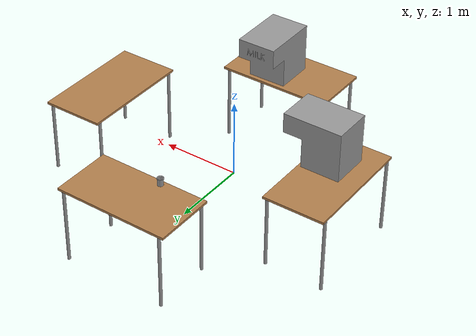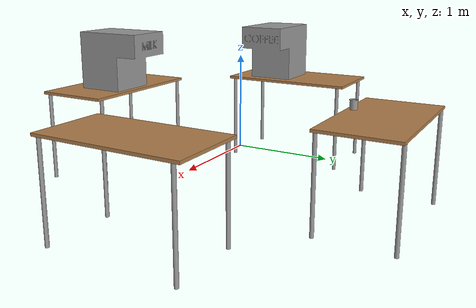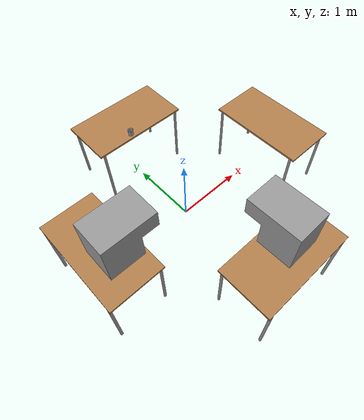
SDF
<?xml version='1.0'?>
<sdf version='1.7'>
  <model name='Coffee_Shop_with_cup_V2'>
    <link name='link_0'>
      <inertial>
        <mass>1</mass>
        <inertia>
          <ixx>0.166667</ixx>
          <ixy>0</ixy>
          <ixz>0</ixz>
          <iyy>0.166667</iyy>
          <iyz>0</iyz>
          <izz>0.166667</izz>
        </inertia>
      </inertial>
      <pose>0.093593 1.30486 0.572749 0 -0 0</pose>
      <visual name='visual'>
        <pose>0 0 0 0 -0 0</pose>
        <geometry>
          <mesh>
            <uri>/project_2_WS/src/barista_robot/worlds/coffee_cup_with_rim_model/meshes/base_link.STL</uri>
            <scale>1 1 1</scale>
          </mesh>
        </geometry>
        <material>
          <lighting>1</lighting>
          <script>
            <uri>file://media/materials/scripts/gazebo.material</uri>
            <name>Gazebo/Grey</name>
          </script>
          <shader type='pixel'/>
        </material>
        <transparency>0</transparency>
        <cast_shadows>1</cast_shadows>
      </visual>
      <collision name='collision'>
        <laser_retro>0</laser_retro>
        <max_contacts>10</max_contacts>
        <pose>0 0 0 0 -0 0</pose>
        <geometry>
          <mesh>
            <uri>/project_2_WS/src/barista_robot/worlds/coffee_cup_with_rim_model/meshes/base_link.STL</uri>
            <scale>1 1 1</scale>
          </mesh>
        </geometry>
        <surface>
          <friction>
            <ode>
              <mu>1</mu>
              <mu2>1</mu2>
              <fdir1>0 0 0</fdir1>
              <slip1>0</slip1>
              <slip2>0</slip2>
            </ode>
            <torsional>
              <coefficient>1</coefficient>
              <patch_radius>0</patch_radius>
              <surface_radius>0</surface_radius>
              <use_patch_radius>1</use_patch_radius>
              <ode>
                <slip>0</slip>
              </ode>
            </torsional>
          </friction>
          <bounce>
            <restitution_coefficient>0</restitution_coefficient>
            <threshold>1e+06</threshold>
          </bounce>
          <contact>
            <collide_without_contact>0</collide_without_contact>
            <collide_without_contact_bitmask>1</collide_without_contact_bitmask>
            <collide_bitmask>1</collide_bitmask>
            <ode>
              <soft_cfm>0</soft_cfm>
              <soft_erp>0.2</soft_erp>
              <kp>1e+13</kp>
              <kd>1</kd>
              <max_vel>0.01</max_vel>
              <min_depth>0</min_depth>
            </ode>
            <bullet>
              <split_impulse>1</split_impulse>
              <split_impulse_penetration_threshold>-0.01</split_impulse_penetration_threshold>
              <soft_cfm>0</soft_cfm>
              <soft_erp>0.2</soft_erp>
              <kp>1e+13</kp>
              <kd>1</kd>
            </bullet>
          </contact>
        </surface>
      </collision>
    </link>
    <link name='link_1'>
      <inertial>
        <mass>1</mass>
        <inertia>
          <ixx>0.166667</ixx>
          <ixy>0</ixy>
          <ixz>0</ixz>
          <iyy>0.166667</iyy>
          <iyz>0</iyz>
          <izz>0.166667</izz>
        </inertia>
      </inertial>
      <pose>-1.26025 0.026703 0.59147 1.56987 -0 0</pose>
      <visual name='visual'>
        <pose>0 0 0 0 -0 0</pose>
        <geometry>
          <mesh>
            <uri>/project_2_WS/src/barista_robot/worlds/coffee_machine_model/meshes/base_link.STL</uri>
            <scale>1 1 1</scale>
          </mesh>
        </geometry>
        <material>
          <lighting>1</lighting>
          <script>
            <uri>file://media/materials/scripts/gazebo.material</uri>
            <name>Gazebo/Grey</name>
          </script>
          <shader type='pixel'/>
        </material>
        <transparency>0</transparency>
        <cast_shadows>1</cast_shadows>
      </visual>
      <collision name='collision'>
        <laser_retro>0</laser_retro>
        <max_contacts>10</max_contacts>
        <pose>0 0 0 0 -0 0</pose>
        <geometry>
          <mesh>
            <uri>/project_2_WS/src/barista_robot/worlds/coffee_machine_model/meshes/base_link.STL</uri>
            <scale>1 1 1</scale>
          </mesh>
        </geometry>
        <surface>
          <friction>
            <ode>
              <mu>1</mu>
              <mu2>1</mu2>
              <fdir1>0 0 0</fdir1>
              <slip1>0</slip1>
              <slip2>0</slip2>
            </ode>
            <torsional>
              <coefficient>1</coefficient>
              <patch_radius>0</patch_radius>
              <surface_radius>0</surface_radius>
              <use_patch_radius>1</use_patch_radius>
              <ode>
                <slip>0</slip>
              </ode>
            </torsional>
          </friction>
          <bounce>
            <restitution_coefficient>0</restitution_coefficient>
            <threshold>1e+06</threshold>
          </bounce>
          <contact>
            <collide_without_contact>0</collide_without_contact>
            <collide_without_contact_bitmask>1</collide_without_contact_bitmask>
            <collide_bitmask>1</collide_bitmask>
            <ode>
              <soft_cfm>0</soft_cfm>
              <soft_erp>0.2</soft_erp>
              <kp>1e+13</kp>
              <kd>1</kd>
              <max_vel>0.01</max_vel>
              <min_depth>0</min_depth>
            </ode>
            <bullet>
              <split_impulse>1</split_impulse>
              <split_impulse_penetration_threshold>-0.01</split_impulse_penetration_threshold>
              <soft_cfm>0</soft_cfm>
              <soft_erp>0.2</soft_erp>
              <kp>1e+13</kp>
              <kd>1</kd>
            </bullet>
          </contact>
        </surface>
      </collision>
    </link>
    <link name='link_2'>
      <inertial>
        <mass>1</mass>
        <inertia>
          <ixx>0.166667</ixx>
          <ixy>0</ixy>
          <ixz>0</ixz>
          <iyy>0.166667</iyy>
          <iyz>0</iyz>
          <izz>0.166667</izz>
        </inertia>
      </inertial>
      <pose>0.188753 -1.51412 0.583682 1.57082 0.001872 1.58158</pose>
      <visual name='visual'>
        <pose>0 0 0 0 -0 0</pose>
        <geometry>
          <mesh>
            <uri>/project_2_WS/src/barista_robot/worlds/milk_machine_model/meshes/base_link.STL</uri>
            <scale>1 1 1</scale>
          </mesh>
        </geometry>
        <material>
          <lighting>1</lighting>
          <script>
            <uri>file://media/materials/scripts/gazebo.material</uri>
            <name>Gazebo/Grey</name>
          </script>
          <shader type='pixel'/>
        </material>
        <transparency>0</transparency>
        <cast_shadows>1</cast_shadows>
      </visual>
      <collision name='collision'>
        <laser_retro>0</laser_retro>
        <max_contacts>10</max_contacts>
        <pose>0 0 0 0 -0 0</pose>
        <geometry>
          <mesh>
            <uri>/project_2_WS/src/barista_robot/worlds/milk_machine_model/meshes/base_link.STL</uri>
            <scale>1 1 1</scale>
          </mesh>
        </geometry>
        <surface>
          <friction>
            <ode>
              <mu>1</mu>
              <mu2>1</mu2>
              <fdir1>0 0 0</fdir1>
              <slip1>0</slip1>
              <slip2>0</slip2>
            </ode>
            <torsional>
              <coefficient>1</coefficient>
              <patch_radius>0</patch_radius>
              <surface_radius>0</surface_radius>
              <use_patch_radius>1</use_patch_radius>
              <ode>
                <slip>0</slip>
              </ode>
            </torsional>
          </friction>
          <bounce>
            <restitution_coefficient>0</restitution_coefficient>
            <threshold>1e+06</threshold>
          </bounce>
          <contact>
            <collide_without_contact>0</collide_without_contact>
            <collide_without_contact_bitmask>1</collide_without_contact_bitmask>
            <collide_bitmask>1</collide_bitmask>
            <ode>
              <soft_cfm>0</soft_cfm>
              <soft_erp>0.2</soft_erp>
              <kp>1e+13</kp>
              <kd>1</kd>
              <max_vel>0.01</max_vel>
              <min_depth>0</min_depth>
            </ode>
            <bullet>
              <split_impulse>1</split_impulse>
              <split_impulse_penetration_threshold>-0.01</split_impulse_penetration_threshold>
              <soft_cfm>0</soft_cfm>
              <soft_erp>0.2</soft_erp>
              <kp>1e+13</kp>
              <kd>1</kd>
            </bullet>
          </contact>
        </surface>
      </collision>
    </link>
    <model name='table'>
      <static>1</static>
      <link name='link'>
        <collision name='surface'>
          <pose>0 0 1 0 -0 0</pose>
          <geometry>
            <box>
              <size>1.5 0.8 0.03</size>
            </box>
          </geometry>
          <surface>
            <friction>
              <ode>
                <mu>0.6</mu>
                <mu2>0.6</mu2>
              </ode>
            </friction>
          </surface>
        </collision>
        <visual name='visual1'>
          <pose>0 0 1 0 -0 0</pose>
          <geometry>
            <box>
              <size>1.5 0.8 0.03</size>
            </box>
          </geometry>
          <material>
            <script>
              <uri>file://media/materials/scripts/gazebo.material</uri>
              <name>Gazebo/Wood</name>
            </script>
          </material>
        </visual>
        <collision name='front_left_leg'>
          <pose>0.68 0.38 0.5 0 -0 0</pose>
          <geometry>
            <cylinder>
              <radius>0.02</radius>
              <length>1</length>
            </cylinder>
          </geometry>
        </collision>
        <visual name='front_left_leg'>
          <pose>0.68 0.38 0.5 0 -0 0</pose>
          <geometry>
            <cylinder>
              <radius>0.02</radius>
              <length>1</length>
            </cylinder>
          </geometry>
          <material>
            <script>
              <uri>file://media/materials/scripts/gazebo.material</uri>
              <name>Gazebo/Grey</name>
            </script>
          </material>
        </visual>
        <collision name='front_right_leg'>
          <pose>0.68 -0.38 0.5 0 -0 0</pose>
          <geometry>
            <cylinder>
              <radius>0.02</radius>
              <length>1</length>
            </cylinder>
          </geometry>
        </collision>
        <visual name='front_right_leg'>
          <pose>0.68 -0.38 0.5 0 -0 0</pose>
          <geometry>
            <cylinder>
              <radius>0.02</radius>
              <length>1</length>
            </cylinder>
          </geometry>
          <material>
            <script>
              <uri>file://media/materials/scripts/gazebo.material</uri>
              <name>Gazebo/Grey</name>
            </script>
          </material>
        </visual>
        <collision name='back_right_leg'>
          <pose>-0.68 -0.38 0.5 0 -0 0</pose>
          <geometry>
            <cylinder>
              <radius>0.02</radius>
              <length>1</length>
            </cylinder>
          </geometry>
        </collision>
        <visual name='back_right_leg'>
          <pose>-0.68 -0.38 0.5 0 -0 0</pose>
          <geometry>
            <cylinder>
              <radius>0.02</radius>
              <length>1</length>
            </cylinder>
          </geometry>
          <material>
            <script>
              <uri>file://media/materials/scripts/gazebo.material</uri>
              <name>Gazebo/Grey</name>
            </script>
          </material>
        </visual>
        <collision name='back_left_leg'>
          <pose>-0.68 0.38 0.5 0 -0 0</pose>
          <geometry>
            <cylinder>
              <radius>0.02</radius>
              <length>1</length>
            </cylinder>
          </geometry>
        </collision>
        <visual name='back_left_leg'>
          <pose>-0.68 0.38 0.5 0 -0 0</pose>
          <geometry>
            <cylinder>
              <radius>0.02</radius>
              <length>1</length>
            </cylinder>
          </geometry>
          <material>
            <script>
              <uri>file://media/materials/scripts/gazebo.material</uri>
              <name>Gazebo/Grey</name>
            </script>
          </material>
        </visual>
      </link>
      <pose>0.241537 1.63474 -0.436974 0 -0 0</pose>
    </model>
    <model name='table_0'>
      <static>1</static>
      <link name='link'>
        <collision name='surface'>
          <pose>0 0 1 0 -0 0</pose>
          <geometry>
            <box>
              <size>1.5 0.8 0.03</size>
            </box>
          </geometry>
          <surface>
            <friction>
              <ode>
                <mu>0.6</mu>
                <mu2>0.6</mu2>
              </ode>
            </friction>
          </surface>
        </collision>
        <visual name='visual1'>
          <pose>0 0 1 0 -0 0</pose>
          <geometry>
            <box>
              <size>1.5 0.8 0.03</size>
            </box>
          </geometry>
          <material>
            <script>
              <uri>file://media/materials/scripts/gazebo.material</uri>
              <name>Gazebo/Wood</name>
            </script>
          </material>
        </visual>
        <collision name='front_left_leg'>
          <pose>0.68 0.38 0.5 0 -0 0</pose>
          <geometry>
            <cylinder>
              <radius>0.02</radius>
              <length>1</length>
            </cylinder>
          </geometry>
        </collision>
        <visual name='front_left_leg'>
          <pose>0.68 0.38 0.5 0 -0 0</pose>
          <geometry>
            <cylinder>
              <radius>0.02</radius>
              <length>1</length>
            </cylinder>
          </geometry>
          <material>
            <script>
              <uri>file://media/materials/scripts/gazebo.material</uri>
              <name>Gazebo/Grey</name>
            </script>
          </material>
        </visual>
        <collision name='front_right_leg'>
          <pose>0.68 -0.38 0.5 0 -0 0</pose>
          <geometry>
            <cylinder>
              <radius>0.02</radius>
              <length>1</length>
            </cylinder>
          </geometry>
        </collision>
        <visual name='front_right_leg'>
          <pose>0.68 -0.38 0.5 0 -0 0</pose>
          <geometry>
            <cylinder>
              <radius>0.02</radius>
              <length>1</length>
            </cylinder>
          </geometry>
          <material>
            <script>
              <uri>file://media/materials/scripts/gazebo.material</uri>
              <name>Gazebo/Grey</name>
            </script>
          </material>
        </visual>
        <collision name='back_right_leg'>
          <pose>-0.68 -0.38 0.5 0 -0 0</pose>
          <geometry>
            <cylinder>
              <radius>0.02</radius>
              <length>1</length>
            </cylinder>
          </geometry>
        </collision>
        <visual name='back_right_leg'>
          <pose>-0.68 -0.38 0.5 0 -0 0</pose>
          <geometry>
            <cylinder>
              <radius>0.02</radius>
              <length>1</length>
            </cylinder>
          </geometry>
          <material>
            <script>
              <uri>file://media/materials/scripts/gazebo.material</uri>
              <name>Gazebo/Grey</name>
            </script>
          </material>
        </visual>
        <collision name='back_left_leg'>
          <pose>-0.68 0.38 0.5 0 -0 0</pose>
          <geometry>
            <cylinder>
              <radius>0.02</radius>
              <length>1</length>
            </cylinder>
          </geometry>
        </collision>
        <visual name='back_left_leg'>
          <pose>-0.68 0.38 0.5 0 -0 0</pose>
          <geometry>
            <cylinder>
              <radius>0.02</radius>
              <length>1</length>
            </cylinder>
          </geometry>
          <material>
            <script>
              <uri>file://media/materials/scripts/gazebo.material</uri>
              <name>Gazebo/Grey</name>
            </script>
          </material>
        </visual>
      </link>
      <pose>1.86258 0.046386 -0.436974 0 0 -1.56805</pose>
    </model>
    <model name='table_1'>
      <static>1</static>
      <link name='link'>
        <collision name='surface'>
          <pose>0 0 1 0 -0 0</pose>
          <geometry>
            <box>
              <size>1.5 0.8 0.03</size>
            </box>
          </geometry>
          <surface>
            <friction>
              <ode>
                <mu>0.6</mu>
                <mu2>0.6</mu2>
              </ode>
            </friction>
          </surface>
        </collision>
        <visual name='visual1'>
          <pose>0 0 1 0 -0 0</pose>
          <geometry>
            <box>
              <size>1.5 0.8 0.03</size>
            </box>
          </geometry>
          <material>
            <script>
              <uri>file://media/materials/scripts/gazebo.material</uri>
              <name>Gazebo/Wood</name>
            </script>
          </material>
        </visual>
        <collision name='front_left_leg'>
          <pose>0.68 0.38 0.5 0 -0 0</pose>
          <geometry>
            <cylinder>
              <radius>0.02</radius>
              <length>1</length>
            </cylinder>
          </geometry>
        </collision>
        <visual name='front_left_leg'>
          <pose>0.68 0.38 0.5 0 -0 0</pose>
          <geometry>
            <cylinder>
              <radius>0.02</radius>
              <length>1</length>
            </cylinder>
          </geometry>
          <material>
            <script>
              <uri>file://media/materials/scripts/gazebo.material</uri>
              <name>Gazebo/Grey</name>
            </script>
          </material>
        </visual>
        <collision name='front_right_leg'>
          <pose>0.68 -0.38 0.5 0 -0 0</pose>
          <geometry>
            <cylinder>
              <radius>0.02</radius>
              <length>1</length>
            </cylinder>
          </geometry>
        </collision>
        <visual name='front_right_leg'>
          <pose>0.68 -0.38 0.5 0 -0 0</pose>
          <geometry>
            <cylinder>
              <radius>0.02</radius>
              <length>1</length>
            </cylinder>
          </geometry>
          <material>
            <script>
              <uri>file://media/materials/scripts/gazebo.material</uri>
              <name>Gazebo/Grey</name>
            </script>
          </material>
        </visual>
        <collision name='back_right_leg'>
          <pose>-0.68 -0.38 0.5 0 -0 0</pose>
          <geometry>
            <cylinder>
              <radius>0.02</radius>
              <length>1</length>
            </cylinder>
          </geometry>
        </collision>
        <visual name='back_right_leg'>
          <pose>-0.68 -0.38 0.5 0 -0 0</pose>
          <geometry>
            <cylinder>
              <radius>0.02</radius>
              <length>1</length>
            </cylinder>
          </geometry>
          <material>
            <script>
              <uri>file://media/materials/scripts/gazebo.material</uri>
              <name>Gazebo/Grey</name>
            </script>
          </material>
        </visual>
        <collision name='back_left_leg'>
          <pose>-0.68 0.38 0.5 0 -0 0</pose>
          <geometry>
            <cylinder>
              <radius>0.02</radius>
              <length>1</length>
            </cylinder>
          </geometry>
        </collision>
        <visual name='back_left_leg'>
          <pose>-0.68 0.38 0.5 0 -0 0</pose>
          <geometry>
            <cylinder>
              <radius>0.02</radius>
              <length>1</length>
            </cylinder>
          </geometry>
          <material>
            <script>
              <uri>file://media/materials/scripts/gazebo.material</uri>
              <name>Gazebo/Grey</name>
            </script>
          </material>
        </visual>
      </link>
      <pose>-1.35123 0.053531 -0.436974 0 0 -1.5656</pose>
    </model>
    <model name='table_2'>
      <static>1</static>
      <link name='link'>
        <collision name='surface'>
          <pose>0 0 1 0 -0 0</pose>
          <geometry>
            <box>
              <size>1.5 0.8 0.03</size>
            </box>
          </geometry>
          <surface>
            <friction>
              <ode>
                <mu>0.6</mu>
                <mu2>0.6</mu2>
              </ode>
            </friction>
          </surface>
        </collision>
        <visual name='visual1'>
          <pose>0 0 1 0 -0 0</pose>
          <geometry>
            <box>
              <size>1.5 0.8 0.03</size>
            </box>
          </geometry>
          <material>
            <script>
              <uri>file://media/materials/scripts/gazebo.material</uri>
              <name>Gazebo/Wood</name>
            </script>
          </material>
        </visual>
        <collision name='front_left_leg'>
          <pose>0.68 0.38 0.5 0 -0 0</pose>
          <geometry>
            <cylinder>
              <radius>0.02</radius>
              <length>1</length>
            </cylinder>
          </geometry>
        </collision>
        <visual name='front_left_leg'>
          <pose>0.68 0.38 0.5 0 -0 0</pose>
          <geometry>
            <cylinder>
              <radius>0.02</radius>
              <length>1</length>
            </cylinder>
          </geometry>
          <material>
            <script>
              <uri>file://media/materials/scripts/gazebo.material</uri>
              <name>Gazebo/Grey</name>
            </script>
          </material>
        </visual>
        <collision name='front_right_leg'>
          <pose>0.68 -0.38 0.5 0 -0 0</pose>
          <geometry>
            <cylinder>
              <radius>0.02</radius>
              <length>1</length>
            </cylinder>
          </geometry>
        </collision>
        <visual name='front_right_leg'>
          <pose>0.68 -0.38 0.5 0 -0 0</pose>
          <geometry>
            <cylinder>
              <radius>0.02</radius>
              <length>1</length>
            </cylinder>
          </geometry>
          <material>
            <script>
              <uri>file://media/materials/scripts/gazebo.material</uri>
              <name>Gazebo/Grey</name>
            </script>
          </material>
        </visual>
        <collision name='back_right_leg'>
          <pose>-0.68 -0.38 0.5 0 -0 0</pose>
          <geometry>
            <cylinder>
              <radius>0.02</radius>
              <length>1</length>
            </cylinder>
          </geometry>
        </collision>
        <visual name='back_right_leg'>
          <pose>-0.68 -0.38 0.5 0 -0 0</pose>
          <geometry>
            <cylinder>
              <radius>0.02</radius>
              <length>1</length>
            </cylinder>
          </geometry>
          <material>
            <script>
              <uri>file://media/materials/scripts/gazebo.material</uri>
              <name>Gazebo/Grey</name>
            </script>
          </material>
        </visual>
        <collision name='back_left_leg'>
          <pose>-0.68 0.38 0.5 0 -0 0</pose>
          <geometry>
            <cylinder>
              <radius>0.02</radius>
              <length>1</length>
            </cylinder>
          </geometry>
        </collision>
        <visual name='back_left_leg'>
          <pose>-0.68 0.38 0.5 0 -0 0</pose>
          <geometry>
            <cylinder>
              <radius>0.02</radius>
              <length>1</length>
            </cylinder>
          </geometry>
          <material>
            <script>
              <uri>file://media/materials/scripts/gazebo.material</uri>
              <name>Gazebo/Grey</name>
            </script>
          </material>
        </visual>
      </link>
      <pose>0.225017 -1.55209 -0.436974 0 -0 0</pose>
    </model>
    <static>0</static>
    <allow_auto_disable>1</allow_auto_disable>
  </model>
</sdf>
